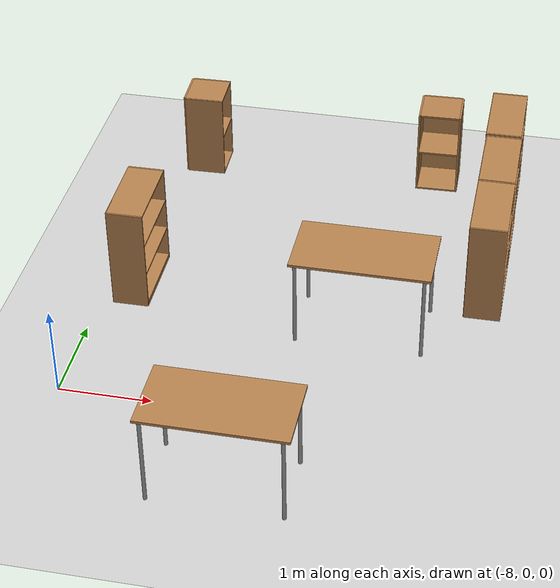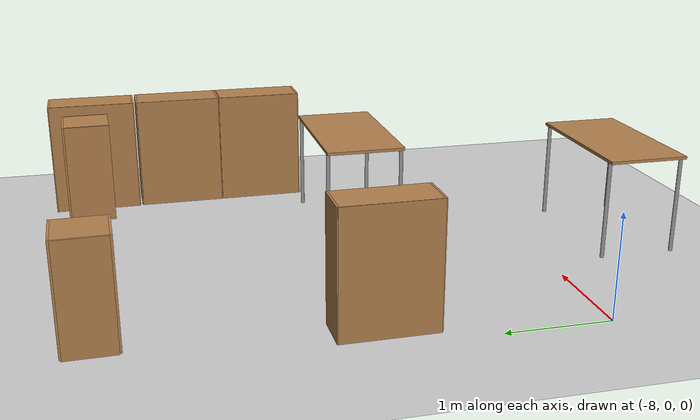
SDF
<sdf version="1.6">
 <world name="default">
  <model name="ground_plane">
   <static>1</static>
   <link name="link">
    <collision name="collision">
     <geometry><plane><normal>0 0 1</normal><size>100 100</size></plane></geometry>
     <surface>
      <contact><collide_bitmask>65535</collide_bitmask></contact>
      <friction><ode><mu>100</mu><mu2>50</mu2></ode></friction>
     </surface>
    </collision>
    <visual name="visual">
     <cast_shadows>0</cast_shadows>
     <geometry><plane><normal>0 0 1</normal><size>100 100</size></plane></geometry>
     <material>
      <script><uri>file://media/materials/scripts/gazebo.material</uri><name>Gazebo/Grey</name></script>
     </material>
    </visual>
   </link>
  </model>
  <model name="table">
   <static>1</static>
   <link name="link">
    <collision name="surface">
     <pose>0 0 1 0 -0 0</pose>
     <geometry><box><size>1.5 0.8 0.03</size></box></geometry>
     <surface><friction><ode><mu>0.6</mu><mu2>0.6</mu2></ode></friction></surface>
    </collision>
    <visual name="visual1">
     <pose>0 0 1 0 -0 0</pose>
     <geometry><box><size>1.5 0.8 0.03</size></box></geometry>
     <material>
      <script><uri>file://media/materials/scripts/gazebo.material</uri><name>Gazebo/Wood</name></script>
     </material>
    </visual>
    <collision name="front_left_leg">
     <pose>0.68 0.38 0.5 0 -0 0</pose>
     <geometry><cylinder><radius>0.02</radius><length>1</length></cylinder></geometry>
    </collision>
    <visual name="front_left_leg">
     <pose>0.68 0.38 0.5 0 -0 0</pose>
     <geometry><cylinder><radius>0.02</radius><length>1</length></cylinder></geometry>
     <material>
      <script><uri>file://media/materials/scripts/gazebo.material</uri><name>Gazebo/Grey</name></script>
     </material>
    </visual>
    <collision name="front_right_leg">
     <pose>0.68 -0.38 0.5 0 -0 0</pose>
     <geometry><cylinder><radius>0.02</radius><length>1</length></cylinder></geometry>
    </collision>
    <visual name="front_right_leg">
     <pose>0.68 -0.38 0.5 0 -0 0</pose>
     <geometry><cylinder><radius>0.02</radius><length>1</length></cylinder></geometry>
     <material>
      <script><uri>file://media/materials/scripts/gazebo.material</uri><name>Gazebo/Grey</name></script>
     </material>
    </visual>
    <collision name="back_right_leg">
     <pose>-0.68 -0.38 0.5 0 -0 0</pose>
     <geometry><cylinder><radius>0.02</radius><length>1</length></cylinder></geometry>
    </collision>
    <visual name="back_right_leg">
     <pose>-0.68 -0.38 0.5 0 -0 0</pose>
     <geometry><cylinder><radius>0.02</radius><length>1</length></cylinder></geometry>
     <material>
      <script><uri>file://media/materials/scripts/gazebo.material</uri><name>Gazebo/Grey</name></script>
     </material>
    </visual>
    <collision name="back_left_leg">
     <pose>-0.68 0.38 0.5 0 -0 0</pose>
     <geometry><cylinder><radius>0.02</radius><length>1</length></cylinder></geometry>
    </collision>
    <visual name="back_left_leg">
     <pose>-0.68 0.38 0.5 0 -0 0</pose>
     <geometry><cylinder><radius>0.02</radius><length>1</length></cylinder></geometry>
     <material>
      <script><uri>file://media/materials/scripts/gazebo.material</uri><name>Gazebo/Grey</name></script>
     </material>
    </visual>
   </link>
   <pose>-6.01061 -0.957315 0 0 -0 0</pose>
  </model>
  <model name="bookshelf_clone">
   <static>1</static>
   <link name="link">
    <inertial><mass>1</mass></inertial>
    <collision name="back">
     <pose>0 0.005 0.6 0 -0 0</pose>
     <geometry><box><size>0.9 0.01 1.2</size></box></geometry>
    </collision>
    <visual name="visual1">
     <pose>0 0.005 0.6 0 -0 0</pose>
     <geometry><box><size>0.9 0.01 1.2</size></box></geometry>
     <material>
      <script><uri>file://media/materials/scripts/gazebo.material</uri><name>Gazebo/Wood</name></script>
     </material>
    </visual>
    <collision name="left_side">
     <pose>0.45 -0.195 0.6 0 -0 0</pose>
     <geometry><box><size>0.02 0.4 1.2</size></box></geometry>
    </collision>
    <visual name="visual2">
     <pose>0.45 -0.195 0.6 0 -0 0</pose>
     <geometry><box><size>0.02 0.4 1.2</size></box></geometry>
     <material>
      <script><uri>file://media/materials/scripts/gazebo.material</uri><name>Gazebo/Wood</name></script>
     </material>
    </visual>
    <collision name="right_side">
     <pose>-0.45 -0.195 0.6 0 -0 0</pose>
     <geometry><box><size>0.02 0.4 1.2</size></box></geometry>
    </collision>
    <visual name="visual3">
     <pose>-0.45 -0.195 0.6 0 -0 0</pose>
     <geometry><box><size>0.02 0.4 1.2</size></box></geometry>
     <material>
      <script><uri>file://media/materials/scripts/gazebo.material</uri><name>Gazebo/Wood</name></script>
     </material>
    </visual>
    <collision name="bottom">
     <pose>0 -0.195 0.03 0 -0 0</pose>
     <geometry><box><size>0.88 0.4 0.06</size></box></geometry>
    </collision>
    <visual name="visual4">
     <pose>0 -0.195 0.03 0 -0 0</pose>
     <geometry><box><size>0.88 0.4 0.06</size></box></geometry>
     <material>
      <script><uri>file://media/materials/scripts/gazebo.material</uri><name>Gazebo/Wood</name></script>
     </material>
    </visual>
    <collision name="top">
     <pose>0 -0.195 1.19 0 -0 0</pose>
     <geometry><box><size>0.88 0.4 0.02</size></box></geometry>
    </collision>
    <visual name="visual5">
     <pose>0 -0.195 1.19 0 -0 0</pose>
     <geometry><box><size>0.88 0.4 0.02</size></box></geometry>
     <material>
      <script><uri>file://media/materials/scripts/gazebo.material</uri><name>Gazebo/Wood</name></script>
     </material>
    </visual>
    <collision name="low_shelf">
     <pose>0 -0.195 0.43 0 -0 0</pose>
     <geometry><box><size>0.88 0.4 0.02</size></box></geometry>
    </collision>
    <visual name="visual6">
     <pose>0 -0.195 0.43 0 -0 0</pose>
     <geometry><box><size>0.88 0.4 0.02</size></box></geometry>
     <material>
      <script><uri>file://media/materials/scripts/gazebo.material</uri><name>Gazebo/Wood</name></script>
     </material>
    </visual>
    <collision name="high_shelf">
     <pose>0 -0.195 0.8 0 -0 0</pose>
     <geometry><box><size>0.88 0.4 0.02</size></box></geometry>
    </collision>
    <visual name="visual7">
     <pose>0 -0.195 0.8 0 -0 0</pose>
     <geometry><box><size>0.88 0.4 0.02</size></box></geometry>
     <material>
      <script><uri>file://media/materials/scripts/gazebo.material</uri><name>Gazebo/Wood</name></script>
     </material>
    </visual>
   </link>
   <pose>-4.05861 4.28854 0 0 -0 1.57948</pose>
  </model>
  <model name="cabinet_clone">
   <static>1</static>
   <link name="cabinet_bottom_plate">
    <inertial>
     <pose>0 0 -1 0 -0 0</pose>
     <inertia><ixx>2.05</ixx><ixy>0</ixy><ixz>0</ixz><iyy>2.05</iyy><iyz>0</iyz><izz>2.05</izz></inertia>
     <mass>25</mass>
    </inertial>
    <collision name="cabinet_bottom_plate_geom">
     <pose>0 0 0.01 0 -0 0</pose>
     <geometry><box><size>0.45 0.45 0.02</size></box></geometry>
    </collision>
    <visual name="cabinet_bottom_plate_geom_visual">
     <pose>0 0 0.01 0 -0 0</pose>
     <geometry><box><size>0.45 0.45 0.02</size></box></geometry>
     <material>
      <script><uri>file://media/materials/scripts/gazebo.material</uri><name>Gazebo/Wood</name></script>
     </material>
    </visual>
    <collision name="cabinet_bottom_plate_geom_cabinet_back_plate">
     <pose>0.235 0 0.51 0 -0 0</pose>
     <geometry><box><size>0.02 0.45 1.02</size></box></geometry>
    </collision>
    <visual name="cabinet_bottom_plate_geom_cabinet_back_plate_visual">
     <pose>0.235 0 0.51 0 -0 0</pose>
     <geometry><box><size>0.02 0.45 1.02</size></box></geometry>
     <material>
      <script><uri>file://media/materials/scripts/gazebo.material</uri><name>Gazebo/Wood</name></script>
     </material>
    </visual>
    <collision name="cabinet_bottom_plate_geom_cabinet_left_plate">
     <pose>0 0.235 0.51 0 -0 0</pose>
     <geometry><box><size>0.45 0.02 1.02</size></box></geometry>
    </collision>
    <visual name="cabinet_bottom_plate_geom_cabinet_left_plate_visual">
     <pose>0 0.235 0.51 0 -0 0</pose>
     <geometry><box><size>0.45 0.02 1.02</size></box></geometry>
     <material>
      <script><uri>file://media/materials/scripts/gazebo.material</uri><name>Gazebo/Wood</name></script>
     </material>
    </visual>
    <collision name="cabinet_bottom_plate_geom_cabinet_middle_plate">
     <pose>0 0 0.51 0 -0 0</pose>
     <geometry><box><size>0.45 0.45 0.02</size></box></geometry>
    </collision>
    <visual name="cabinet_bottom_plate_geom_cabinet_middle_plate_visual">
     <pose>0 0 0.51 0 -0 0</pose>
     <geometry><box><size>0.45 0.45 0.02</size></box></geometry>
     <material>
      <script><uri>file://media/materials/scripts/gazebo.material</uri><name>Gazebo/Wood</name></script>
     </material>
    </visual>
    <collision name="cabinet_bottom_plate_geom_cabinet_right_plate">
     <pose>0 -0.235 0.51 0 -0 0</pose>
     <geometry><box><size>0.45 0.02 1.02</size></box></geometry>
    </collision>
    <visual name="cabinet_bottom_plate_geom_cabinet_right_plate_visual">
     <pose>0 -0.235 0.51 0 -0 0</pose>
     <geometry><box><size>0.45 0.02 1.02</size></box></geometry>
     <material>
      <script><uri>file://media/materials/scripts/gazebo.material</uri><name>Gazebo/Wood</name></script>
     </material>
    </visual>
    <collision name="cabinet_bottom_plate_geom_cabinet_top_plate">
     <pose>0 0 1.01 0 -0 0</pose>
     <geometry><box><size>0.45 0.45 0.02</size></box></geometry>
    </collision>
    <visual name="cabinet_bottom_plate_geom_cabinet_top_plate_visual">
     <pose>0 0 1.01 0 -0 0</pose>
     <geometry><box><size>0.45 0.45 0.02</size></box></geometry>
     <material>
      <script><uri>file://media/materials/scripts/gazebo.material</uri><name>Gazebo/Wood</name></script>
     </material>
    </visual>
   </link>
   <pose>-7.45829 4.37115 0.043779 0 0 -3.11635</pose>
  </model>
  <model name="bookshelf_clone_clone">
   <static>1</static>
   <link name="link">
    <inertial><mass>1</mass></inertial>
    <collision name="back">
     <pose>0 0.005 0.6 0 -0 0</pose>
     <geometry><box><size>0.9 0.01 1.2</size></box></geometry>
    </collision>
    <visual name="visual1">
     <pose>0 0.005 0.6 0 -0 0</pose>
     <geometry><box><size>0.9 0.01 1.2</size></box></geometry>
     <material>
      <script><uri>file://media/materials/scripts/gazebo.material</uri><name>Gazebo/Wood</name></script>
     </material>
    </visual>
    <collision name="left_side">
     <pose>0.45 -0.195 0.6 0 -0 0</pose>
     <geometry><box><size>0.02 0.4 1.2</size></box></geometry>
    </collision>
    <visual name="visual2">
     <pose>0.45 -0.195 0.6 0 -0 0</pose>
     <geometry><box><size>0.02 0.4 1.2</size></box></geometry>
     <material>
      <script><uri>file://media/materials/scripts/gazebo.material</uri><name>Gazebo/Wood</name></script>
     </material>
    </visual>
    <collision name="right_side">
     <pose>-0.45 -0.195 0.6 0 -0 0</pose>
     <geometry><box><size>0.02 0.4 1.2</size></box></geometry>
    </collision>
    <visual name="visual3">
     <pose>-0.45 -0.195 0.6 0 -0 0</pose>
     <geometry><box><size>0.02 0.4 1.2</size></box></geometry>
     <material>
      <script><uri>file://media/materials/scripts/gazebo.material</uri><name>Gazebo/Wood</name></script>
     </material>
    </visual>
    <collision name="bottom">
     <pose>0 -0.195 0.03 0 -0 0</pose>
     <geometry><box><size>0.88 0.4 0.06</size></box></geometry>
    </collision>
    <visual name="visual4">
     <pose>0 -0.195 0.03 0 -0 0</pose>
     <geometry><box><size>0.88 0.4 0.06</size></box></geometry>
     <material>
      <script><uri>file://media/materials/scripts/gazebo.material</uri><name>Gazebo/Wood</name></script>
     </material>
    </visual>
    <collision name="top">
     <pose>0 -0.195 1.19 0 -0 0</pose>
     <geometry><box><size>0.88 0.4 0.02</size></box></geometry>
    </collision>
    <visual name="visual5">
     <pose>0 -0.195 1.19 0 -0 0</pose>
     <geometry><box><size>0.88 0.4 0.02</size></box></geometry>
     <material>
      <script><uri>file://media/materials/scripts/gazebo.material</uri><name>Gazebo/Wood</name></script>
     </material>
    </visual>
    <collision name="low_shelf">
     <pose>0 -0.195 0.43 0 -0 0</pose>
     <geometry><box><size>0.88 0.4 0.02</size></box></geometry>
    </collision>
    <visual name="visual6">
     <pose>0 -0.195 0.43 0 -0 0</pose>
     <geometry><box><size>0.88 0.4 0.02</size></box></geometry>
     <material>
      <script><uri>file://media/materials/scripts/gazebo.material</uri><name>Gazebo/Wood</name></script>
     </material>
    </visual>
    <collision name="high_shelf">
     <pose>0 -0.195 0.8 0 -0 0</pose>
     <geometry><box><size>0.88 0.4 0.02</size></box></geometry>
    </collision>
    <visual name="visual7">
     <pose>0 -0.195 0.8 0 -0 0</pose>
     <geometry><box><size>0.88 0.4 0.02</size></box></geometry>
     <material>
      <script><uri>file://media/materials/scripts/gazebo.material</uri><name>Gazebo/Wood</name></script>
     </material>
    </visual>
   </link>
   <pose>-4.04128 3.3463 0 0 -0 1.57948</pose>
  </model>
  <model name="bookshelf_clone_clone_0">
   <static>1</static>
   <link name="link">
    <inertial><mass>1</mass></inertial>
    <collision name="back">
     <pose>0 0.005 0.6 0 -0 0</pose>
     <geometry><box><size>0.9 0.01 1.2</size></box></geometry>
    </collision>
    <visual name="visual1">
     <pose>0 0.005 0.6 0 -0 0</pose>
     <geometry><box><size>0.9 0.01 1.2</size></box></geometry>
     <material>
      <script><uri>file://media/materials/scripts/gazebo.material</uri><name>Gazebo/Wood</name></script>
     </material>
    </visual>
    <collision name="left_side">
     <pose>0.45 -0.195 0.6 0 -0 0</pose>
     <geometry><box><size>0.02 0.4 1.2</size></box></geometry>
    </collision>
    <visual name="visual2">
     <pose>0.45 -0.195 0.6 0 -0 0</pose>
     <geometry><box><size>0.02 0.4 1.2</size></box></geometry>
     <material>
      <script><uri>file://media/materials/scripts/gazebo.material</uri><name>Gazebo/Wood</name></script>
     </material>
    </visual>
    <collision name="right_side">
     <pose>-0.45 -0.195 0.6 0 -0 0</pose>
     <geometry><box><size>0.02 0.4 1.2</size></box></geometry>
    </collision>
    <visual name="visual3">
     <pose>-0.45 -0.195 0.6 0 -0 0</pose>
     <geometry><box><size>0.02 0.4 1.2</size></box></geometry>
     <material>
      <script><uri>file://media/materials/scripts/gazebo.material</uri><name>Gazebo/Wood</name></script>
     </material>
    </visual>
    <collision name="bottom">
     <pose>0 -0.195 0.03 0 -0 0</pose>
     <geometry><box><size>0.88 0.4 0.06</size></box></geometry>
    </collision>
    <visual name="visual4">
     <pose>0 -0.195 0.03 0 -0 0</pose>
     <geometry><box><size>0.88 0.4 0.06</size></box></geometry>
     <material>
      <script><uri>file://media/materials/scripts/gazebo.material</uri><name>Gazebo/Wood</name></script>
     </material>
    </visual>
    <collision name="top">
     <pose>0 -0.195 1.19 0 -0 0</pose>
     <geometry><box><size>0.88 0.4 0.02</size></box></geometry>
    </collision>
    <visual name="visual5">
     <pose>0 -0.195 1.19 0 -0 0</pose>
     <geometry><box><size>0.88 0.4 0.02</size></box></geometry>
     <material>
      <script><uri>file://media/materials/scripts/gazebo.material</uri><name>Gazebo/Wood</name></script>
     </material>
    </visual>
    <collision name="low_shelf">
     <pose>0 -0.195 0.43 0 -0 0</pose>
     <geometry><box><size>0.88 0.4 0.02</size></box></geometry>
    </collision>
    <visual name="visual6">
     <pose>0 -0.195 0.43 0 -0 0</pose>
     <geometry><box><size>0.88 0.4 0.02</size></box></geometry>
     <material>
      <script><uri>file://media/materials/scripts/gazebo.material</uri><name>Gazebo/Wood</name></script>
     </material>
    </visual>
    <collision name="high_shelf">
     <pose>0 -0.195 0.8 0 -0 0</pose>
     <geometry><box><size>0.88 0.4 0.02</size></box></geometry>
    </collision>
    <visual name="visual7">
     <pose>0 -0.195 0.8 0 -0 0</pose>
     <geometry><box><size>0.88 0.4 0.02</size></box></geometry>
     <material>
      <script><uri>file://media/materials/scripts/gazebo.material</uri><name>Gazebo/Wood</name></script>
     </material>
    </visual>
   </link>
   <pose>-4.03287 2.43602 0 0 -0 1.57948</pose>
  </model>
  <model name="bookshelf_clone_clone_2">
   <static>1</static>
   <link name="link">
    <inertial><mass>1</mass></inertial>
    <collision name="back">
     <pose>0 0.005 0.6 0 -0 0</pose>
     <geometry><box><size>0.9 0.01 1.2</size></box></geometry>
    </collision>
    <visual name="visual1">
     <pose>0 0.005 0.6 0 -0 0</pose>
     <geometry><box><size>0.9 0.01 1.2</size></box></geometry>
     <material>
      <script><uri>file://media/materials/scripts/gazebo.material</uri><name>Gazebo/Wood</name></script>
     </material>
    </visual>
    <collision name="left_side">
     <pose>0.45 -0.195 0.6 0 -0 0</pose>
     <geometry><box><size>0.02 0.4 1.2</size></box></geometry>
    </collision>
    <visual name="visual2">
     <pose>0.45 -0.195 0.6 0 -0 0</pose>
     <geometry><box><size>0.02 0.4 1.2</size></box></geometry>
     <material>
      <script><uri>file://media/materials/scripts/gazebo.material</uri><name>Gazebo/Wood</name></script>
     </material>
    </visual>
    <collision name="right_side">
     <pose>-0.45 -0.195 0.6 0 -0 0</pose>
     <geometry><box><size>0.02 0.4 1.2</size></box></geometry>
    </collision>
    <visual name="visual3">
     <pose>-0.45 -0.195 0.6 0 -0 0</pose>
     <geometry><box><size>0.02 0.4 1.2</size></box></geometry>
     <material>
      <script><uri>file://media/materials/scripts/gazebo.material</uri><name>Gazebo/Wood</name></script>
     </material>
    </visual>
    <collision name="bottom">
     <pose>0 -0.195 0.03 0 -0 0</pose>
     <geometry><box><size>0.88 0.4 0.06</size></box></geometry>
    </collision>
    <visual name="visual4">
     <pose>0 -0.195 0.03 0 -0 0</pose>
     <geometry><box><size>0.88 0.4 0.06</size></box></geometry>
     <material>
      <script><uri>file://media/materials/scripts/gazebo.material</uri><name>Gazebo/Wood</name></script>
     </material>
    </visual>
    <collision name="top">
     <pose>0 -0.195 1.19 0 -0 0</pose>
     <geometry><box><size>0.88 0.4 0.02</size></box></geometry>
    </collision>
    <visual name="visual5">
     <pose>0 -0.195 1.19 0 -0 0</pose>
     <geometry><box><size>0.88 0.4 0.02</size></box></geometry>
     <material>
      <script><uri>file://media/materials/scripts/gazebo.material</uri><name>Gazebo/Wood</name></script>
     </material>
    </visual>
    <collision name="low_shelf">
     <pose>0 -0.195 0.43 0 -0 0</pose>
     <geometry><box><size>0.88 0.4 0.02</size></box></geometry>
    </collision>
    <visual name="visual6">
     <pose>0 -0.195 0.43 0 -0 0</pose>
     <geometry><box><size>0.88 0.4 0.02</size></box></geometry>
     <material>
      <script><uri>file://media/materials/scripts/gazebo.material</uri><name>Gazebo/Wood</name></script>
     </material>
    </visual>
    <collision name="high_shelf">
     <pose>0 -0.195 0.8 0 -0 0</pose>
     <geometry><box><size>0.88 0.4 0.02</size></box></geometry>
    </collision>
    <visual name="visual7">
     <pose>0 -0.195 0.8 0 -0 0</pose>
     <geometry><box><size>0.88 0.4 0.02</size></box></geometry>
     <material>
      <script><uri>file://media/materials/scripts/gazebo.material</uri><name>Gazebo/Wood</name></script>
     </material>
    </visual>
   </link>
   <pose>-7.85386 1.94991 0 0 -0 1.57948</pose>
  </model>
  <model name="cabinet_clone_clone">
   <static>1</static>
   <link name="cabinet_bottom_plate">
    <inertial>
     <pose>0 0 -1 0 -0 0</pose>
     <inertia><ixx>2.05</ixx><ixy>0</ixy><ixz>0</ixz><iyy>2.05</iyy><iyz>0</iyz><izz>2.05</izz></inertia>
     <mass>25</mass>
    </inertial>
    <collision name="cabinet_bottom_plate_geom">
     <pose>0 0 0.01 0 -0 0</pose>
     <geometry><box><size>0.45 0.45 0.02</size></box></geometry>
    </collision>
    <visual name="cabinet_bottom_plate_geom_visual">
     <pose>0 0 0.01 0 -0 0</pose>
     <geometry><box><size>0.45 0.45 0.02</size></box></geometry>
     <material>
      <script><uri>file://media/materials/scripts/gazebo.material</uri><name>Gazebo/Wood</name></script>
     </material>
    </visual>
    <collision name="cabinet_bottom_plate_geom_cabinet_back_plate">
     <pose>0.235 0 0.51 0 -0 0</pose>
     <geometry><box><size>0.02 0.45 1.02</size></box></geometry>
    </collision>
    <visual name="cabinet_bottom_plate_geom_cabinet_back_plate_visual">
     <pose>0.235 0 0.51 0 -0 0</pose>
     <geometry><box><size>0.02 0.45 1.02</size></box></geometry>
     <material>
      <script><uri>file://media/materials/scripts/gazebo.material</uri><name>Gazebo/Wood</name></script>
     </material>
    </visual>
    <collision name="cabinet_bottom_plate_geom_cabinet_left_plate">
     <pose>0 0.235 0.51 0 -0 0</pose>
     <geometry><box><size>0.45 0.02 1.02</size></box></geometry>
    </collision>
    <visual name="cabinet_bottom_plate_geom_cabinet_left_plate_visual">
     <pose>0 0.235 0.51 0 -0 0</pose>
     <geometry><box><size>0.45 0.02 1.02</size></box></geometry>
     <material>
      <script><uri>file://media/materials/scripts/gazebo.material</uri><name>Gazebo/Wood</name></script>
     </material>
    </visual>
    <collision name="cabinet_bottom_plate_geom_cabinet_middle_plate">
     <pose>0 0 0.51 0 -0 0</pose>
     <geometry><box><size>0.45 0.45 0.02</size></box></geometry>
    </collision>
    <visual name="cabinet_bottom_plate_geom_cabinet_middle_plate_visual">
     <pose>0 0 0.51 0 -0 0</pose>
     <geometry><box><size>0.45 0.45 0.02</size></box></geometry>
     <material>
      <script><uri>file://media/materials/scripts/gazebo.material</uri><name>Gazebo/Wood</name></script>
     </material>
    </visual>
    <collision name="cabinet_bottom_plate_geom_cabinet_right_plate">
     <pose>0 -0.235 0.51 0 -0 0</pose>
     <geometry><box><size>0.45 0.02 1.02</size></box></geometry>
    </collision>
    <visual name="cabinet_bottom_plate_geom_cabinet_right_plate_visual">
     <pose>0 -0.235 0.51 0 -0 0</pose>
     <geometry><box><size>0.45 0.02 1.02</size></box></geometry>
     <material>
      <script><uri>file://media/materials/scripts/gazebo.material</uri><name>Gazebo/Wood</name></script>
     </material>
    </visual>
    <collision name="cabinet_bottom_plate_geom_cabinet_top_plate">
     <pose>0 0 1.01 0 -0 0</pose>
     <geometry><box><size>0.45 0.45 0.02</size></box></geometry>
    </collision>
    <visual name="cabinet_bottom_plate_geom_cabinet_top_plate_visual">
     <pose>0 0 1.01 0 -0 0</pose>
     <geometry><box><size>0.45 0.45 0.02</size></box></geometry>
     <material>
      <script><uri>file://media/materials/scripts/gazebo.material</uri><name>Gazebo/Wood</name></script>
     </material>
    </visual>
   </link>
   <pose>-4.63174 4.33833 0.15688 0 -0 1.6015</pose>
  </model>
  <model name="table_clone_0">
   <static>1</static>
   <link name="link">
    <collision name="surface">
     <pose>0 0 1 0 -0 0</pose>
     <geometry><box><size>1.5 0.8 0.03</size></box></geometry>
     <surface><friction><ode><mu>0.6</mu><mu2>0.6</mu2></ode></friction></surface>
    </collision>
    <visual name="visual1">
     <pose>0 0 1 0 -0 0</pose>
     <geometry><box><size>1.5 0.8 0.03</size></box></geometry>
     <material>
      <script><uri>file://media/materials/scripts/gazebo.material</uri><name>Gazebo/Wood</name></script>
     </material>
    </visual>
    <collision name="front_left_leg">
     <pose>0.68 0.38 0.5 0 -0 0</pose>
     <geometry><cylinder><radius>0.02</radius><length>1</length></cylinder></geometry>
    </collision>
    <visual name="front_left_leg">
     <pose>0.68 0.38 0.5 0 -0 0</pose>
     <geometry><cylinder><radius>0.02</radius><length>1</length></cylinder></geometry>
     <material>
      <script><uri>file://media/materials/scripts/gazebo.material</uri><name>Gazebo/Grey</name></script>
     </material>
    </visual>
    <collision name="front_right_leg">
     <pose>0.68 -0.38 0.5 0 -0 0</pose>
     <geometry><cylinder><radius>0.02</radius><length>1</length></cylinder></geometry>
    </collision>
    <visual name="front_right_leg">
     <pose>0.68 -0.38 0.5 0 -0 0</pose>
     <geometry><cylinder><radius>0.02</radius><length>1</length></cylinder></geometry>
     <material>
      <script><uri>file://media/materials/scripts/gazebo.material</uri><name>Gazebo/Grey</name></script>
     </material>
    </visual>
    <collision name="back_right_leg">
     <pose>-0.68 -0.38 0.5 0 -0 0</pose>
     <geometry><cylinder><radius>0.02</radius><length>1</length></cylinder></geometry>
    </collision>
    <visual name="back_right_leg">
     <pose>-0.68 -0.38 0.5 0 -0 0</pose>
     <geometry><cylinder><radius>0.02</radius><length>1</length></cylinder></geometry>
     <material>
      <script><uri>file://media/materials/scripts/gazebo.material</uri><name>Gazebo/Grey</name></script>
     </material>
    </visual>
    <collision name="back_left_leg">
     <pose>-0.68 0.38 0.5 0 -0 0</pose>
     <geometry><cylinder><radius>0.02</radius><length>1</length></cylinder></geometry>
    </collision>
    <visual name="back_left_leg">
     <pose>-0.68 0.38 0.5 0 -0 0</pose>
     <geometry><cylinder><radius>0.02</radius><length>1</length></cylinder></geometry>
     <material>
      <script><uri>file://media/materials/scripts/gazebo.material</uri><name>Gazebo/Grey</name></script>
     </material>
    </visual>
   </link>
   <pose>-5.08034 1.62797 0 0 -0 0</pose>
  </model>
 </world>
</sdf>
